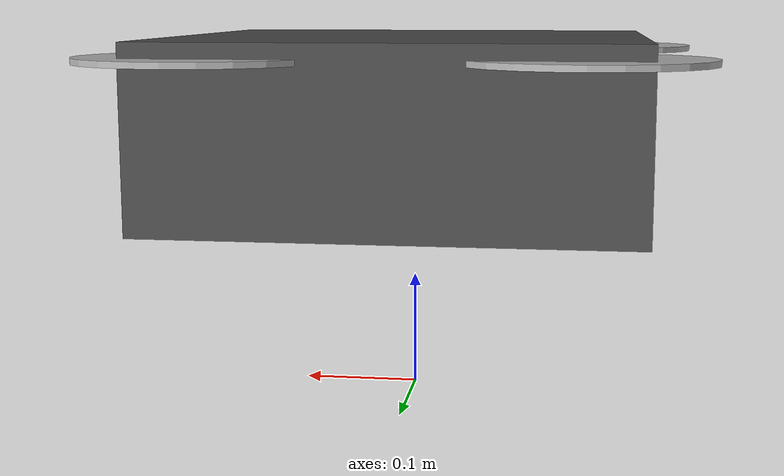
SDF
<?xml version="1.0" encoding="UTF-8"?>
<sdf version='1.9'>
  <model name='depth_drone_px4_base'>
    <pose>0 0 .24 0 0 0</pose>
    <self_collide>false</self_collide>
    <static>false</static>
    <link name="base_link">
      <inertial>
        <mass>1.5</mass>
        <inertia>
          <ixx>0.02281</ixx>
          <ixy>0</ixy>
          <ixz>0</ixz>
          <iyy>0.02281</iyy>
          <iyz>0</iyz>
          <izz>0.04</izz>
        </inertia>
      </inertial>
      <gravity>true</gravity>
      <velocity_decay />
      <visual name="base_link_visual">
        <pose>0 0 0 0 0 0</pose>
        <geometry>
          <box>
            <size>0.4 0.4 0.15</size>
          </box>
        </geometry>
        <material>
          <ambient>0.2 0.2 0.2 1</ambient>
          <diffuse>0.3 0.3 0.3 1</diffuse>
        </material>
      </visual>
      <collision name="base_link_collision">
        <pose>0 0 0 0 0 0</pose>
        <geometry>
          <box>
            <size>0.4 0.4 0.15</size>
          </box>
        </geometry>
        <surface>
          <contact>
            <ode>
              <min_depth>0.001</min_depth>
              <max_vel>0</max_vel>
            </ode>
          </contact>
          <friction>
            <ode />
          </friction>
        </surface>
      </collision>
      <sensor name="air_pressure_sensor" type="air_pressure">
        <gz_frame_id>base_link</gz_frame_id>
        <always_on>1</always_on>
        <update_rate>50</update_rate>
        <air_pressure>
          <pressure>
            <noise type="gaussian">
              <mean>0</mean>
              <stddev>3</stddev>
            </noise>
          </pressure>
        </air_pressure>
      </sensor>
      <sensor name="magnetometer_sensor" type="magnetometer">
        <gz_frame_id>base_link</gz_frame_id>
        <always_on>1</always_on>
        <update_rate>100</update_rate>
        <magnetometer>
          <x>
            <noise type="gaussian">
              <stddev>0.0001</stddev>
            </noise>
          </x>
          <y>
            <noise type="gaussian">
              <stddev>0.0001</stddev>
            </noise>
          </y>
          <z>
            <noise type="gaussian">
              <stddev>0.0001</stddev>
            </noise>
          </z>
        </magnetometer>
      </sensor>
      <sensor name="imu_sensor" type="imu">
        <gz_frame_id>base_link</gz_frame_id>
        <always_on>1</always_on>
        <update_rate>250</update_rate>
        <imu>
          <angular_velocity>
            <x>
              <noise type="gaussian">
                <mean>0.0</mean>
                <stddev>0.0008726646</stddev>
              </noise>
            </x>
            <y>
              <noise type="gaussian">
                <mean>0.0</mean>
                <stddev>0.0008726646</stddev>
              </noise>
            </y>
            <z>
              <noise type="gaussian">
                <mean>0.0</mean>
                <stddev>0.0008726646</stddev>
              </noise>
            </z>
          </angular_velocity>
          <linear_acceleration>
            <x>
              <noise type="gaussian">
                <mean>0.0</mean>
                <stddev>0.00637</stddev>
              </noise>
            </x>
            <y>
              <noise type="gaussian">
                <mean>0.0</mean>
                <stddev>0.00637</stddev>
              </noise>
            </y>
            <z>
              <noise type="gaussian">
                <mean>0.0</mean>
                <stddev>0.00686</stddev>
              </noise>
            </z>
          </linear_acceleration>
        </imu>
      </sensor>
      <sensor name="navsat_sensor" type="navsat">
        <gz_frame_id>base_link</gz_frame_id>
        <always_on>1</always_on>
        <update_rate>30</update_rate>
      </sensor>
    </link>
    <!-- Rotor 0: front-right (CCW) at x=0.15, y=-0.15 -->
    <link name="rotor_0">
      <gravity>true</gravity>
      <self_collide>false</self_collide>
      <velocity_decay />
      <pose>0.15 -0.15 0.06 0 0 0</pose>
      <inertial>
        <mass>0.025</mass>
        <inertia>
          <ixx>9.75e-07</ixx>
          <iyy>0.000166704</iyy>
          <izz>0.000167604</izz>
        </inertia>
      </inertial>
      <visual name="rotor_0_visual">
        <pose>0 0 0 0 0 0</pose>
        <geometry>
          <cylinder>
            <radius>0.1</radius>
            <length>0.005</length>
          </cylinder>
        </geometry>
        <material>
          <ambient>0.5 0.5 0.5 1</ambient>
          <diffuse>0.7 0.7 0.7 1</diffuse>
        </material>
      </visual>
      <collision name="rotor_0_collision">
        <pose>0 0 0 0 0 0</pose>
        <geometry>
          <cylinder>
            <radius>0.1</radius>
            <length>0.005</length>
          </cylinder>
        </geometry>
        <surface>
          <contact>
            <ode>
              <min_depth>0.001</min_depth>
              <max_vel>0</max_vel>
            </ode>
          </contact>
          <friction>
            <ode />
          </friction>
        </surface>
      </collision>
    </link>
    <joint name="rotor_0_joint" type="revolute">
      <parent>base_link</parent>
      <child>rotor_0</child>
      <axis>
        <xyz>0 0 1</xyz>
        <limit>
          <lower>-1e+16</lower>
          <upper>1e+16</upper>
        </limit>
        <dynamics>
          <spring_reference>0</spring_reference>
          <spring_stiffness>0</spring_stiffness>
        </dynamics>
      </axis>
    </joint>
    <!-- Rotor 1: rear-left (CCW) at x=-0.15, y=0.15 -->
    <link name="rotor_1">
      <gravity>true</gravity>
      <self_collide>false</self_collide>
      <velocity_decay />
      <pose>-0.15 0.15 0.06 0 0 0</pose>
      <inertial>
        <mass>0.025</mass>
        <inertia>
          <ixx>9.75e-07</ixx>
          <iyy>0.000166704</iyy>
          <izz>0.000167604</izz>
        </inertia>
      </inertial>
      <visual name="rotor_1_visual">
        <pose>0 0 0 0 0 0</pose>
        <geometry>
          <cylinder>
            <radius>0.1</radius>
            <length>0.005</length>
          </cylinder>
        </geometry>
        <material>
          <ambient>0.5 0.5 0.5 1</ambient>
          <diffuse>0.7 0.7 0.7 1</diffuse>
        </material>
      </visual>
      <collision name="rotor_1_collision">
        <pose>0 0 0 0 0 0</pose>
        <geometry>
          <cylinder>
            <radius>0.1</radius>
            <length>0.005</length>
          </cylinder>
        </geometry>
        <surface>
          <contact>
            <ode>
              <min_depth>0.001</min_depth>
              <max_vel>0</max_vel>
            </ode>
          </contact>
          <friction>
            <ode />
          </friction>
        </surface>
      </collision>
    </link>
    <joint name="rotor_1_joint" type="revolute">
      <parent>base_link</parent>
      <child>rotor_1</child>
      <axis>
        <xyz>0 0 1</xyz>
        <limit>
          <lower>-1e+16</lower>
          <upper>1e+16</upper>
        </limit>
        <dynamics>
          <spring_reference>0</spring_reference>
          <spring_stiffness>0</spring_stiffness>
        </dynamics>
      </axis>
    </joint>
    <!-- Rotor 2: front-left (CW) at x=0.15, y=0.15 -->
    <link name="rotor_2">
      <gravity>true</gravity>
      <self_collide>false</self_collide>
      <velocity_decay />
      <pose>0.15 0.15 0.06 0 0 0</pose>
      <inertial>
        <mass>0.025</mass>
        <inertia>
          <ixx>9.75e-07</ixx>
          <iyy>0.000166704</iyy>
          <izz>0.000167604</izz>
        </inertia>
      </inertial>
      <visual name="rotor_2_visual">
        <pose>0 0 0 0 0 0</pose>
        <geometry>
          <cylinder>
            <radius>0.1</radius>
            <length>0.005</length>
          </cylinder>
        </geometry>
        <material>
          <ambient>0.5 0.5 0.5 1</ambient>
          <diffuse>0.7 0.7 0.7 1</diffuse>
        </material>
      </visual>
      <collision name="rotor_2_collision">
        <pose>0 0 0 0 0 0</pose>
        <geometry>
          <cylinder>
            <radius>0.1</radius>
            <length>0.005</length>
          </cylinder>
        </geometry>
        <surface>
          <contact>
            <ode>
              <min_depth>0.001</min_depth>
              <max_vel>0</max_vel>
            </ode>
          </contact>
          <friction>
            <ode />
          </friction>
        </surface>
      </collision>
    </link>
    <joint name="rotor_2_joint" type="revolute">
      <parent>base_link</parent>
      <child>rotor_2</child>
      <axis>
        <xyz>0 0 1</xyz>
        <limit>
          <lower>-1e+16</lower>
          <upper>1e+16</upper>
        </limit>
        <dynamics>
          <spring_reference>0</spring_reference>
          <spring_stiffness>0</spring_stiffness>
        </dynamics>
      </axis>
    </joint>
    <!-- Rotor 3: rear-right (CW) at x=-0.15, y=-0.15 -->
    <link name="rotor_3">
      <gravity>true</gravity>
      <self_collide>false</self_collide>
      <velocity_decay />
      <pose>-0.15 -0.15 0.06 0 0 0</pose>
      <inertial>
        <mass>0.025</mass>
        <inertia>
          <ixx>9.75e-07</ixx>
          <iyy>0.000166704</iyy>
          <izz>0.000167604</izz>
        </inertia>
      </inertial>
      <visual name="rotor_3_visual">
        <pose>0 0 0 0 0 0</pose>
        <geometry>
          <cylinder>
            <radius>0.1</radius>
            <length>0.005</length>
          </cylinder>
        </geometry>
        <material>
          <ambient>0.5 0.5 0.5 1</ambient>
          <diffuse>0.7 0.7 0.7 1</diffuse>
        </material>
      </visual>
      <collision name="rotor_3_collision">
        <pose>0 0 0 0 0 0</pose>
        <geometry>
          <cylinder>
            <radius>0.1</radius>
            <length>0.005</length>
          </cylinder>
        </geometry>
        <surface>
          <contact>
            <ode>
              <min_depth>0.001</min_depth>
              <max_vel>0</max_vel>
            </ode>
          </contact>
          <friction>
            <ode />
          </friction>
        </surface>
      </collision>
    </link>
    <joint name="rotor_3_joint" type="revolute">
      <parent>base_link</parent>
      <child>rotor_3</child>
      <axis>
        <xyz>0 0 1</xyz>
        <limit>
          <lower>-1e+16</lower>
          <upper>1e+16</upper>
        </limit>
        <dynamics>
          <spring_reference>0</spring_reference>
          <spring_stiffness>0</spring_stiffness>
        </dynamics>
      </axis>
    </joint>
  </model>
</sdf>
